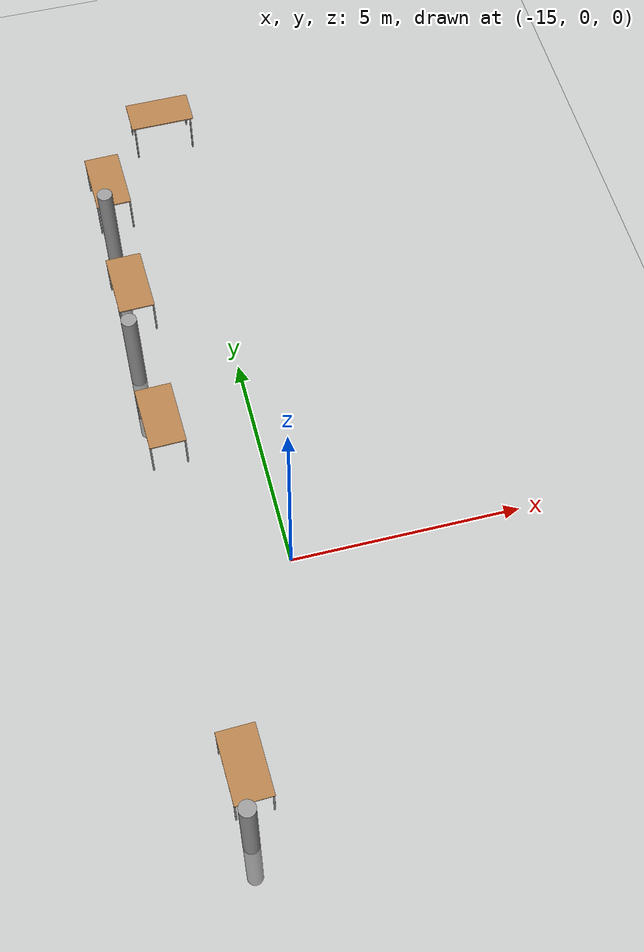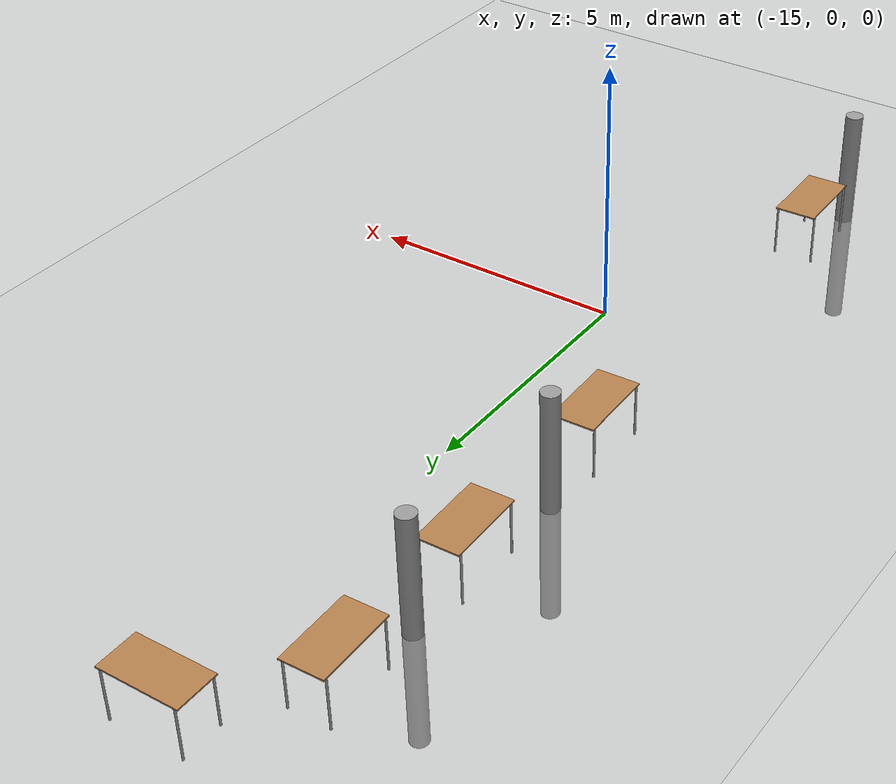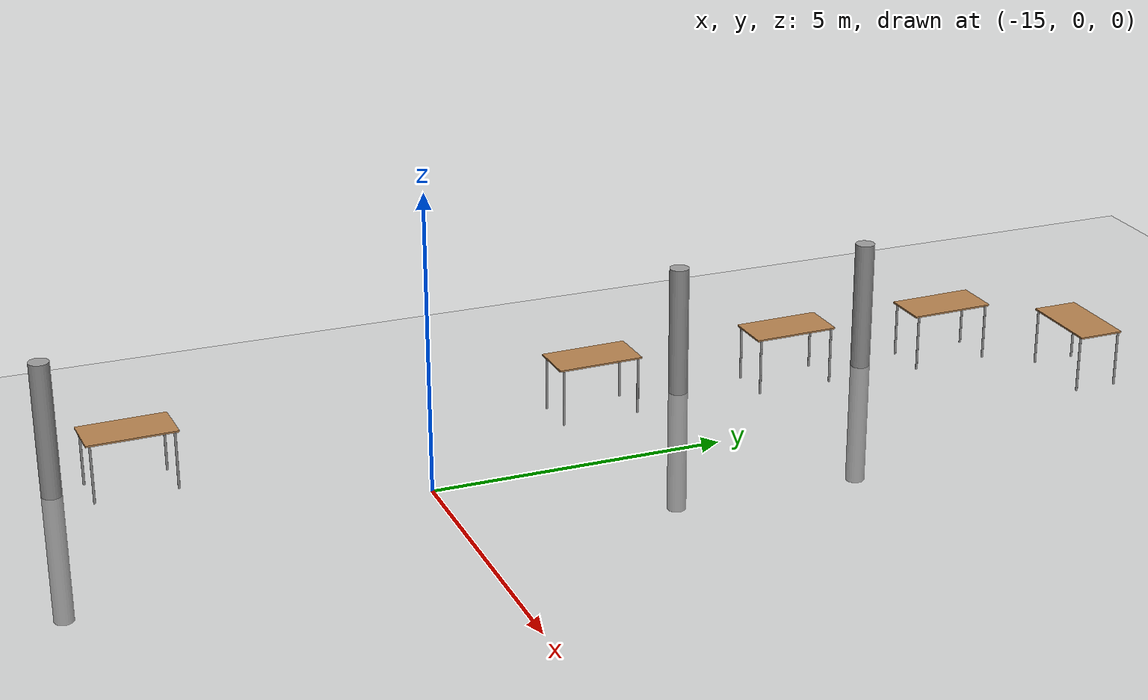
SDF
<sdf version="1.7">
 <world name="default">
  <model name="ground_plane">
   <static>1</static>
   <link name="link">
    <collision name="collision">
     <geometry><plane><normal>0 0 1</normal><size>100 100</size></plane></geometry>
     <surface>
      <contact><collide_bitmask>65535</collide_bitmask></contact>
      <friction><ode><mu>100</mu><mu2>50</mu2></ode></friction>
     </surface>
    </collision>
    <visual name="visual">
     <cast_shadows>0</cast_shadows>
     <geometry><plane><normal>0 0 1</normal><size>100 100</size></plane></geometry>
     <material>
      <script><uri>file://media/materials/scripts/gazebo.material</uri><name>Gazebo/Grey</name></script>
     </material>
    </visual>
   </link>
  </model>
  <model name="filar_9">
   <link name="link">
    <inertial>
     <mass>0.532177</mass>
     <inertia>
      <ixx>0.930096</ixx>
      <ixy>0</ixy>
      <ixz>0</ixz>
      <iyy>0.930096</iyy>
      <iyz>0</iyz>
      <izz>0.00774183</izz>
     </inertia>
    </inertial>
    <visual name="visual">
     <geometry><cylinder><radius>0.170572</radius><length>4.57005</length></cylinder></geometry>
     <material>
      <script><name>Gazebo/Grey</name><uri>file://media/materials/scripts/gazebo.material</uri></script>
      <shader type="pixel"/>
     </material>
    </visual>
    <collision name="collision">
     <geometry><cylinder><radius>0.170572</radius><length>4.57005</length></cylinder></geometry>
     <surface>
      <friction>
       <ode><mu>1</mu><mu2>1</mu2><fdir1>0 0 0</fdir1><slip1>0</slip1><slip2>0</slip2></ode>
       <torsional>
        <coefficient>1</coefficient>
        <patch_radius>0</patch_radius>
        <surface_radius>0</surface_radius>
        <use_patch_radius>1</use_patch_radius>
        <ode><slip>0</slip></ode>
       </torsional>
      </friction>
      <bounce><restitution_coefficient>0</restitution_coefficient><threshold>1e+06</threshold></bounce>
      <contact>
       <collide_without_contact>0</collide_without_contact>
       <collide_without_contact_bitmask>1</collide_without_contact_bitmask>
       <collide_bitmask>1</collide_bitmask>
       <ode>
        <soft_cfm>0</soft_cfm>
        <soft_erp>0.2</soft_erp>
        <kp>1e+13</kp>
        <kd>1</kd>
        <max_vel>0.01</max_vel>
        <min_depth>0</min_depth>
       </ode>
       <bullet>
        <split_impulse>1</split_impulse>
        <split_impulse_penetration_threshold>-0.01</split_impulse_penetration_threshold>
        <soft_cfm>0</soft_cfm>
        <soft_erp>0.2</soft_erp>
        <kp>1e+13</kp>
        <kd>1</kd>
       </bullet>
      </contact>
     </surface>
    </collision>
   </link>
   <static>0</static>
   <pose>-17.1599 -5.65048 0 0 -0 0</pose>
  </model>
  <model name="Table_3_clone_0">
   <static>1</static>
   <link name="link">
    <collision name="surface">
     <pose>0 0 1 0 -0 0</pose>
     <geometry><box><size>1.5 0.8 0.03</size></box></geometry>
     <surface><friction><ode><mu>0.6</mu><mu2>0.6</mu2></ode></friction></surface>
    </collision>
    <visual name="visual1">
     <pose>0 0 1 0 -0 0</pose>
     <geometry><box><size>1.5 0.8 0.03</size></box></geometry>
     <material>
      <diffuse>1 1 1 1</diffuse>
      <script><uri>file://media/materials/scripts/gazebo.material</uri><name>Gazebo/Wood</name></script>
      <pbr><metal><albedo_map>model://Table/Table_Diffuse.jpg</albedo_map></metal></pbr>
     </material>
    </visual>
    <collision name="front_left_leg">
     <pose>0.68 0.38 0.5 0 -0 0</pose>
     <geometry><cylinder><radius>0.02</radius><length>1</length></cylinder></geometry>
    </collision>
    <visual name="front_left_leg">
     <pose>0.68 0.38 0.5 0 -0 0</pose>
     <geometry><cylinder><radius>0.02</radius><length>1</length></cylinder></geometry>
     <material>
      <diffuse>0.5 0.5 0.5 1</diffuse>
      <script><uri>file://media/materials/scripts/gazebo.material</uri><name>Gazebo/Grey</name></script>
     </material>
    </visual>
    <collision name="front_right_leg">
     <pose>0.68 -0.38 0.5 0 -0 0</pose>
     <geometry><cylinder><radius>0.02</radius><length>1</length></cylinder></geometry>
    </collision>
    <visual name="front_right_leg">
     <pose>0.68 -0.38 0.5 0 -0 0</pose>
     <geometry><cylinder><radius>0.02</radius><length>1</length></cylinder></geometry>
     <material>
      <diffuse>0.5 0.5 0.5 1</diffuse>
      <script><uri>file://media/materials/scripts/gazebo.material</uri><name>Gazebo/Grey</name></script>
     </material>
    </visual>
    <collision name="back_right_leg">
     <pose>-0.68 -0.38 0.5 0 -0 0</pose>
     <geometry><cylinder><radius>0.02</radius><length>1</length></cylinder></geometry>
    </collision>
    <visual name="back_right_leg">
     <pose>-0.68 -0.38 0.5 0 -0 0</pose>
     <geometry><cylinder><radius>0.02</radius><length>1</length></cylinder></geometry>
     <material>
      <diffuse>0.5 0.5 0.5 1</diffuse>
      <script><uri>file://media/materials/scripts/gazebo.material</uri><name>Gazebo/Grey</name></script>
     </material>
    </visual>
    <collision name="back_left_leg">
     <pose>-0.68 0.38 0.5 0 -0 0</pose>
     <geometry><cylinder><radius>0.02</radius><length>1</length></cylinder></geometry>
    </collision>
    <visual name="back_left_leg">
     <pose>-0.68 0.38 0.5 0 -0 0</pose>
     <geometry><cylinder><radius>0.02</radius><length>1</length></cylinder></geometry>
     <material>
      <diffuse>0.5 0.5 0.5 1</diffuse>
      <script><uri>file://media/materials/scripts/gazebo.material</uri><name>Gazebo/Grey</name></script>
     </material>
    </visual>
   </link>
   <pose>-16.9686 -4.41044 0 0 0 -1.54257</pose>
  </model>
  <model name="Table_3_clone_1">
   <static>1</static>
   <link name="link">
    <collision name="surface">
     <pose>0 0 1 0 -0 0</pose>
     <geometry><box><size>1.5 0.8 0.03</size></box></geometry>
     <surface><friction><ode><mu>0.6</mu><mu2>0.6</mu2></ode></friction></surface>
    </collision>
    <visual name="visual1">
     <pose>0 0 1 0 -0 0</pose>
     <geometry><box><size>1.5 0.8 0.03</size></box></geometry>
     <material>
      <diffuse>1 1 1 1</diffuse>
      <script><uri>file://media/materials/scripts/gazebo.material</uri><name>Gazebo/Wood</name></script>
      <pbr><metal><albedo_map>model://Table/Table_Diffuse.jpg</albedo_map></metal></pbr>
     </material>
    </visual>
    <collision name="front_left_leg">
     <pose>0.68 0.38 0.5 0 -0 0</pose>
     <geometry><cylinder><radius>0.02</radius><length>1</length></cylinder></geometry>
    </collision>
    <visual name="front_left_leg">
     <pose>0.68 0.38 0.5 0 -0 0</pose>
     <geometry><cylinder><radius>0.02</radius><length>1</length></cylinder></geometry>
     <material>
      <diffuse>0.5 0.5 0.5 1</diffuse>
      <script><uri>file://media/materials/scripts/gazebo.material</uri><name>Gazebo/Grey</name></script>
     </material>
    </visual>
    <collision name="front_right_leg">
     <pose>0.68 -0.38 0.5 0 -0 0</pose>
     <geometry><cylinder><radius>0.02</radius><length>1</length></cylinder></geometry>
    </collision>
    <visual name="front_right_leg">
     <pose>0.68 -0.38 0.5 0 -0 0</pose>
     <geometry><cylinder><radius>0.02</radius><length>1</length></cylinder></geometry>
     <material>
      <diffuse>0.5 0.5 0.5 1</diffuse>
      <script><uri>file://media/materials/scripts/gazebo.material</uri><name>Gazebo/Grey</name></script>
     </material>
    </visual>
    <collision name="back_right_leg">
     <pose>-0.68 -0.38 0.5 0 -0 0</pose>
     <geometry><cylinder><radius>0.02</radius><length>1</length></cylinder></geometry>
    </collision>
    <visual name="back_right_leg">
     <pose>-0.68 -0.38 0.5 0 -0 0</pose>
     <geometry><cylinder><radius>0.02</radius><length>1</length></cylinder></geometry>
     <material>
      <diffuse>0.5 0.5 0.5 1</diffuse>
      <script><uri>file://media/materials/scripts/gazebo.material</uri><name>Gazebo/Grey</name></script>
     </material>
    </visual>
    <collision name="back_left_leg">
     <pose>-0.68 0.38 0.5 0 -0 0</pose>
     <geometry><cylinder><radius>0.02</radius><length>1</length></cylinder></geometry>
    </collision>
    <visual name="back_left_leg">
     <pose>-0.68 0.38 0.5 0 -0 0</pose>
     <geometry><cylinder><radius>0.02</radius><length>1</length></cylinder></geometry>
     <material>
      <diffuse>0.5 0.5 0.5 1</diffuse>
      <script><uri>file://media/materials/scripts/gazebo.material</uri><name>Gazebo/Grey</name></script>
     </material>
    </visual>
   </link>
   <pose>-16.9987 3.5378 0 0 0 -1.54257</pose>
  </model>
  <model name="Table_3_clone_2">
   <static>1</static>
   <link name="link">
    <collision name="surface">
     <pose>0 0 1 0 -0 0</pose>
     <geometry><box><size>1.5 0.8 0.03</size></box></geometry>
     <surface><friction><ode><mu>0.6</mu><mu2>0.6</mu2></ode></friction></surface>
    </collision>
    <visual name="visual1">
     <pose>0 0 1 0 -0 0</pose>
     <geometry><box><size>1.5 0.8 0.03</size></box></geometry>
     <material>
      <diffuse>1 1 1 1</diffuse>
      <script><uri>file://media/materials/scripts/gazebo.material</uri><name>Gazebo/Wood</name></script>
      <pbr><metal><albedo_map>model://Table/Table_Diffuse.jpg</albedo_map></metal></pbr>
     </material>
    </visual>
    <collision name="front_left_leg">
     <pose>0.68 0.38 0.5 0 -0 0</pose>
     <geometry><cylinder><radius>0.02</radius><length>1</length></cylinder></geometry>
    </collision>
    <visual name="front_left_leg">
     <pose>0.68 0.38 0.5 0 -0 0</pose>
     <geometry><cylinder><radius>0.02</radius><length>1</length></cylinder></geometry>
     <material>
      <diffuse>0.5 0.5 0.5 1</diffuse>
      <script><uri>file://media/materials/scripts/gazebo.material</uri><name>Gazebo/Grey</name></script>
     </material>
    </visual>
    <collision name="front_right_leg">
     <pose>0.68 -0.38 0.5 0 -0 0</pose>
     <geometry><cylinder><radius>0.02</radius><length>1</length></cylinder></geometry>
    </collision>
    <visual name="front_right_leg">
     <pose>0.68 -0.38 0.5 0 -0 0</pose>
     <geometry><cylinder><radius>0.02</radius><length>1</length></cylinder></geometry>
     <material>
      <diffuse>0.5 0.5 0.5 1</diffuse>
      <script><uri>file://media/materials/scripts/gazebo.material</uri><name>Gazebo/Grey</name></script>
     </material>
    </visual>
    <collision name="back_right_leg">
     <pose>-0.68 -0.38 0.5 0 -0 0</pose>
     <geometry><cylinder><radius>0.02</radius><length>1</length></cylinder></geometry>
    </collision>
    <visual name="back_right_leg">
     <pose>-0.68 -0.38 0.5 0 -0 0</pose>
     <geometry><cylinder><radius>0.02</radius><length>1</length></cylinder></geometry>
     <material>
      <diffuse>0.5 0.5 0.5 1</diffuse>
      <script><uri>file://media/materials/scripts/gazebo.material</uri><name>Gazebo/Grey</name></script>
     </material>
    </visual>
    <collision name="back_left_leg">
     <pose>-0.68 0.38 0.5 0 -0 0</pose>
     <geometry><cylinder><radius>0.02</radius><length>1</length></cylinder></geometry>
    </collision>
    <visual name="back_left_leg">
     <pose>-0.68 0.38 0.5 0 -0 0</pose>
     <geometry><cylinder><radius>0.02</radius><length>1</length></cylinder></geometry>
     <material>
      <diffuse>0.5 0.5 0.5 1</diffuse>
      <script><uri>file://media/materials/scripts/gazebo.material</uri><name>Gazebo/Grey</name></script>
     </material>
    </visual>
   </link>
   <pose>-16.971 7.17754 0 0 0 -1.54257</pose>
  </model>
  <model name="Table_3_clone_3">
   <static>1</static>
   <link name="link">
    <collision name="surface">
     <pose>0 0 1 0 -0 0</pose>
     <geometry><box><size>1.5 0.8 0.03</size></box></geometry>
     <surface><friction><ode><mu>0.6</mu><mu2>0.6</mu2></ode></friction></surface>
    </collision>
    <visual name="visual1">
     <pose>0 0 1 0 -0 0</pose>
     <geometry><box><size>1.5 0.8 0.03</size></box></geometry>
     <material>
      <diffuse>1 1 1 1</diffuse>
      <script><uri>file://media/materials/scripts/gazebo.material</uri><name>Gazebo/Wood</name></script>
      <pbr><metal><albedo_map>model://Table/Table_Diffuse.jpg</albedo_map></metal></pbr>
     </material>
    </visual>
    <collision name="front_left_leg">
     <pose>0.68 0.38 0.5 0 -0 0</pose>
     <geometry><cylinder><radius>0.02</radius><length>1</length></cylinder></geometry>
    </collision>
    <visual name="front_left_leg">
     <pose>0.68 0.38 0.5 0 -0 0</pose>
     <geometry><cylinder><radius>0.02</radius><length>1</length></cylinder></geometry>
     <material>
      <diffuse>0.5 0.5 0.5 1</diffuse>
      <script><uri>file://media/materials/scripts/gazebo.material</uri><name>Gazebo/Grey</name></script>
     </material>
    </visual>
    <collision name="front_right_leg">
     <pose>0.68 -0.38 0.5 0 -0 0</pose>
     <geometry><cylinder><radius>0.02</radius><length>1</length></cylinder></geometry>
    </collision>
    <visual name="front_right_leg">
     <pose>0.68 -0.38 0.5 0 -0 0</pose>
     <geometry><cylinder><radius>0.02</radius><length>1</length></cylinder></geometry>
     <material>
      <diffuse>0.5 0.5 0.5 1</diffuse>
      <script><uri>file://media/materials/scripts/gazebo.material</uri><name>Gazebo/Grey</name></script>
     </material>
    </visual>
    <collision name="back_right_leg">
     <pose>-0.68 -0.38 0.5 0 -0 0</pose>
     <geometry><cylinder><radius>0.02</radius><length>1</length></cylinder></geometry>
    </collision>
    <visual name="back_right_leg">
     <pose>-0.68 -0.38 0.5 0 -0 0</pose>
     <geometry><cylinder><radius>0.02</radius><length>1</length></cylinder></geometry>
     <material>
      <diffuse>0.5 0.5 0.5 1</diffuse>
      <script><uri>file://media/materials/scripts/gazebo.material</uri><name>Gazebo/Grey</name></script>
     </material>
    </visual>
    <collision name="back_left_leg">
     <pose>-0.68 0.38 0.5 0 -0 0</pose>
     <geometry><cylinder><radius>0.02</radius><length>1</length></cylinder></geometry>
    </collision>
    <visual name="back_left_leg">
     <pose>-0.68 0.38 0.5 0 -0 0</pose>
     <geometry><cylinder><radius>0.02</radius><length>1</length></cylinder></geometry>
     <material>
      <diffuse>0.5 0.5 0.5 1</diffuse>
      <script><uri>file://media/materials/scripts/gazebo.material</uri><name>Gazebo/Grey</name></script>
     </material>
    </visual>
   </link>
   <pose>-16.9276 10.2335 0 0 0 -1.54257</pose>
  </model>
  <model name="Table_3_clone_4">
   <static>1</static>
   <link name="link">
    <collision name="surface">
     <pose>0 0 1 0 -0 0</pose>
     <geometry><box><size>1.5 0.8 0.03</size></box></geometry>
     <surface><friction><ode><mu>0.6</mu><mu2>0.6</mu2></ode></friction></surface>
    </collision>
    <visual name="visual1">
     <pose>0 0 1 0 -0 0</pose>
     <geometry><box><size>1.5 0.8 0.03</size></box></geometry>
     <material>
      <diffuse>1 1 1 1</diffuse>
      <script><uri>file://media/materials/scripts/gazebo.material</uri><name>Gazebo/Wood</name></script>
      <pbr><metal><albedo_map>model://Table/Table_Diffuse.jpg</albedo_map></metal></pbr>
     </material>
    </visual>
    <collision name="front_left_leg">
     <pose>0.68 0.38 0.5 0 -0 0</pose>
     <geometry><cylinder><radius>0.02</radius><length>1</length></cylinder></geometry>
    </collision>
    <visual name="front_left_leg">
     <pose>0.68 0.38 0.5 0 -0 0</pose>
     <geometry><cylinder><radius>0.02</radius><length>1</length></cylinder></geometry>
     <material>
      <diffuse>0.5 0.5 0.5 1</diffuse>
      <script><uri>file://media/materials/scripts/gazebo.material</uri><name>Gazebo/Grey</name></script>
     </material>
    </visual>
    <collision name="front_right_leg">
     <pose>0.68 -0.38 0.5 0 -0 0</pose>
     <geometry><cylinder><radius>0.02</radius><length>1</length></cylinder></geometry>
    </collision>
    <visual name="front_right_leg">
     <pose>0.68 -0.38 0.5 0 -0 0</pose>
     <geometry><cylinder><radius>0.02</radius><length>1</length></cylinder></geometry>
     <material>
      <diffuse>0.5 0.5 0.5 1</diffuse>
      <script><uri>file://media/materials/scripts/gazebo.material</uri><name>Gazebo/Grey</name></script>
     </material>
    </visual>
    <collision name="back_right_leg">
     <pose>-0.68 -0.38 0.5 0 -0 0</pose>
     <geometry><cylinder><radius>0.02</radius><length>1</length></cylinder></geometry>
    </collision>
    <visual name="back_right_leg">
     <pose>-0.68 -0.38 0.5 0 -0 0</pose>
     <geometry><cylinder><radius>0.02</radius><length>1</length></cylinder></geometry>
     <material>
      <diffuse>0.5 0.5 0.5 1</diffuse>
      <script><uri>file://media/materials/scripts/gazebo.material</uri><name>Gazebo/Grey</name></script>
     </material>
    </visual>
    <collision name="back_left_leg">
     <pose>-0.68 0.38 0.5 0 -0 0</pose>
     <geometry><cylinder><radius>0.02</radius><length>1</length></cylinder></geometry>
    </collision>
    <visual name="back_left_leg">
     <pose>-0.68 0.38 0.5 0 -0 0</pose>
     <geometry><cylinder><radius>0.02</radius><length>1</length></cylinder></geometry>
     <material>
      <diffuse>0.5 0.5 0.5 1</diffuse>
      <script><uri>file://media/materials/scripts/gazebo.material</uri><name>Gazebo/Grey</name></script>
     </material>
    </visual>
   </link>
   <pose>-15.3226 12.0663 0 0 0 -3.13147</pose>
  </model>
  <model name="filar_10">
   <link name="link">
    <inertial>
     <mass>0.532177</mass>
     <inertia>
      <ixx>0.930096</ixx>
      <ixy>0</ixy>
      <ixz>0</ixz>
      <iyy>0.930096</iyy>
      <iyz>0</iyz>
      <izz>0.00774183</izz>
     </inertia>
    </inertial>
    <visual name="visual">
     <geometry><cylinder><radius>0.170572</radius><length>4.57005</length></cylinder></geometry>
     <material>
      <script><name>Gazebo/Grey</name><uri>file://media/materials/scripts/gazebo.material</uri></script>
      <shader type="pixel"/>
     </material>
    </visual>
    <collision name="collision">
     <geometry><cylinder><radius>0.170572</radius><length>4.57005</length></cylinder></geometry>
     <surface>
      <friction>
       <ode><mu>1</mu><mu2>1</mu2><fdir1>0 0 0</fdir1><slip1>0</slip1><slip2>0</slip2></ode>
       <torsional>
        <coefficient>1</coefficient>
        <patch_radius>0</patch_radius>
        <surface_radius>0</surface_radius>
        <use_patch_radius>1</use_patch_radius>
        <ode><slip>0</slip></ode>
       </torsional>
      </friction>
      <bounce><restitution_coefficient>0</restitution_coefficient><threshold>1e+06</threshold></bounce>
      <contact>
       <collide_without_contact>0</collide_without_contact>
       <collide_without_contact_bitmask>1</collide_without_contact_bitmask>
       <collide_bitmask>1</collide_bitmask>
       <ode>
        <soft_cfm>0</soft_cfm>
        <soft_erp>0.2</soft_erp>
        <kp>1e+13</kp>
        <kd>1</kd>
        <max_vel>0.01</max_vel>
        <min_depth>0</min_depth>
       </ode>
       <bullet>
        <split_impulse>1</split_impulse>
        <split_impulse_penetration_threshold>-0.01</split_impulse_penetration_threshold>
        <soft_cfm>0</soft_cfm>
        <soft_erp>0.2</soft_erp>
        <kp>1e+13</kp>
        <kd>1</kd>
       </bullet>
      </contact>
     </surface>
    </collision>
   </link>
   <static>0</static>
   <pose>-17.2276 5.23615 0 0 -0 0</pose>
  </model>
  <model name="filar_11">
   <link name="link">
    <inertial>
     <mass>0.532177</mass>
     <inertia>
      <ixx>0.930096</ixx>
      <ixy>0</ixy>
      <ixz>0</ixz>
      <iyy>0.930096</iyy>
      <iyz>0</iyz>
      <izz>0.00774183</izz>
     </inertia>
    </inertial>
    <visual name="visual">
     <geometry><cylinder><radius>0.170572</radius><length>4.57005</length></cylinder></geometry>
     <material>
      <script><name>Gazebo/Grey</name><uri>file://media/materials/scripts/gazebo.material</uri></script>
      <shader type="pixel"/>
     </material>
    </visual>
    <collision name="collision">
     <geometry><cylinder><radius>0.170572</radius><length>4.57005</length></cylinder></geometry>
     <surface>
      <friction>
       <ode><mu>1</mu><mu2>1</mu2><fdir1>0 0 0</fdir1><slip1>0</slip1><slip2>0</slip2></ode>
       <torsional>
        <coefficient>1</coefficient>
        <patch_radius>0</patch_radius>
        <surface_radius>0</surface_radius>
        <use_patch_radius>1</use_patch_radius>
        <ode><slip>0</slip></ode>
       </torsional>
      </friction>
      <bounce><restitution_coefficient>0</restitution_coefficient><threshold>1e+06</threshold></bounce>
      <contact>
       <collide_without_contact>0</collide_without_contact>
       <collide_without_contact_bitmask>1</collide_without_contact_bitmask>
       <collide_bitmask>1</collide_bitmask>
       <ode>
        <soft_cfm>0</soft_cfm>
        <soft_erp>0.2</soft_erp>
        <kp>1e+13</kp>
        <kd>1</kd>
        <max_vel>0.01</max_vel>
        <min_depth>0</min_depth>
       </ode>
       <bullet>
        <split_impulse>1</split_impulse>
        <split_impulse_penetration_threshold>-0.01</split_impulse_penetration_threshold>
        <soft_cfm>0</soft_cfm>
        <soft_erp>0.2</soft_erp>
        <kp>1e+13</kp>
        <kd>1</kd>
       </bullet>
      </contact>
     </surface>
    </collision>
   </link>
   <static>0</static>
   <pose>-17.1153 8.7414 0 0 -0 0</pose>
  </model>
 </world>
</sdf>
